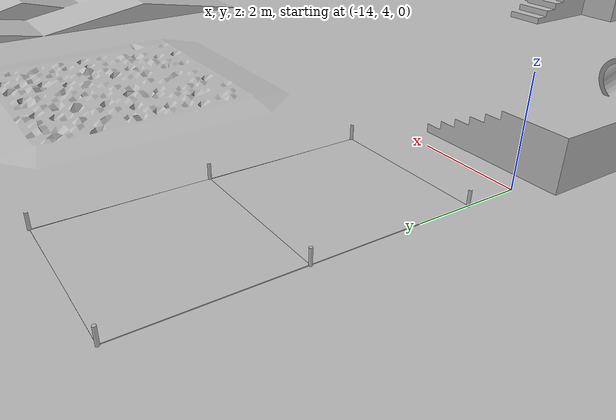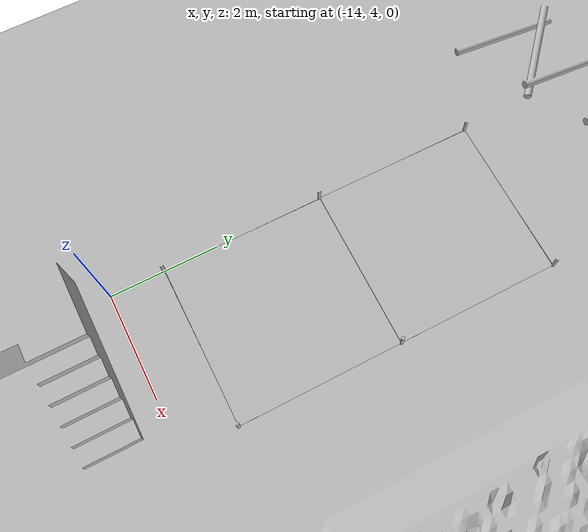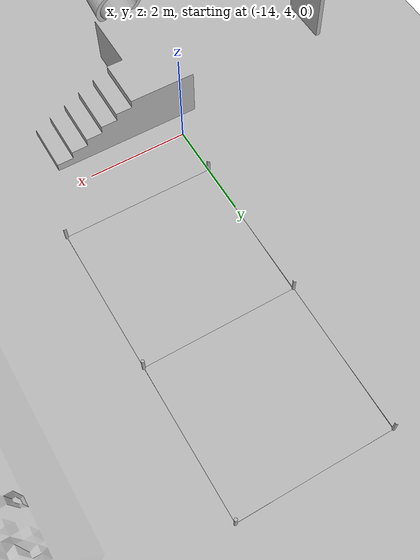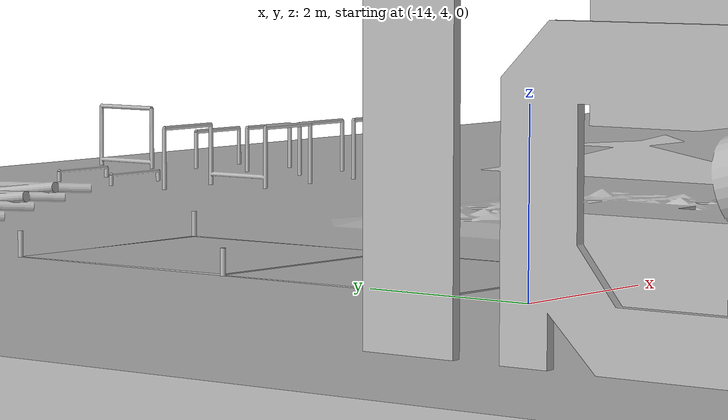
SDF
<?xml version="1.0"?>
<sdf version="1.4">
  <model name="playground">
    <pose>0 0 0 0 0 0</pose>
    <static>true</static>

    <!-- Playground -->
    <link name="playground">
      <pose>0.447 3.1 0.548 1.57079632679 0 0</pose>
      <visual name="visual">
        <geometry>
          <mesh>
            <uri>model://playground/meshes/playground.stl</uri>
          </mesh>
        </geometry>
      </visual>
      <collision name="collision">
        <geometry>
          <mesh>
            <uri>model://playground/meshes/playground.stl</uri>
          </mesh>
        </geometry>
        <surface>
          <friction>
            <ode>
              <mu>0.8</mu>
              <mu2>0.8</mu2>
            </ode>
          </friction>
        </surface>
      </collision>
    </link>

    <!-- Slippery area -->
    <link name="slippery_area">
      <pose>-12.5 6.5 -0.5 0 0 0</pose>
      <visual name="visual">
        <geometry>
          <mesh>
            <uri>model://playground/meshes/slippery_area.dae</uri>
          </mesh>
        </geometry>
      </visual>
      <collision name="collision">
        <geometry>
          <mesh>
            <uri>model://playground/meshes/slippery_area.dae</uri>
          </mesh>
        </geometry>
        <surface>
          <friction>
            <ode>
              <mu>0.3</mu>
              <mu2>0.3</mu2>
            </ode>
          </friction>
        </surface>
      </collision>
    </link>

    <!-- Very slippery area -->
    <link name="very_slippery_area">
      <pose>-12.5 9.5 -0.5 0 0 0</pose>
      <visual name="visual">
        <geometry>
          <mesh>
            <uri>model://playground/meshes/very_slippery_area.dae</uri>
          </mesh>
        </geometry>
      </visual>
      <collision name="collision">
        <geometry>
          <mesh>
            <uri>model://playground/meshes/very_slippery_area.dae</uri>
          </mesh>
        </geometry>
        <surface>
          <friction>
            <ode>
              <mu>0.1</mu>
              <mu2>0.1</mu2>
            </ode>
          </friction>
        </surface>
      </collision>
    </link>

  </model>
</sdf>
